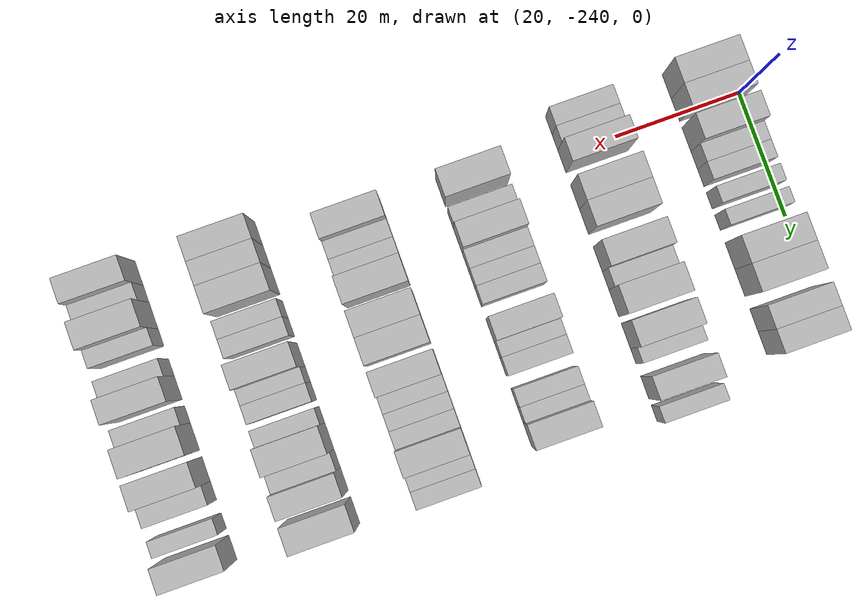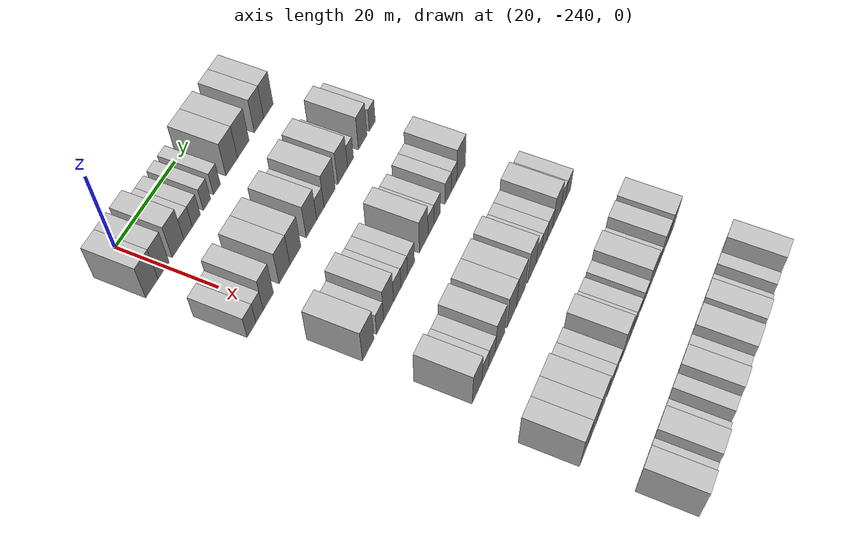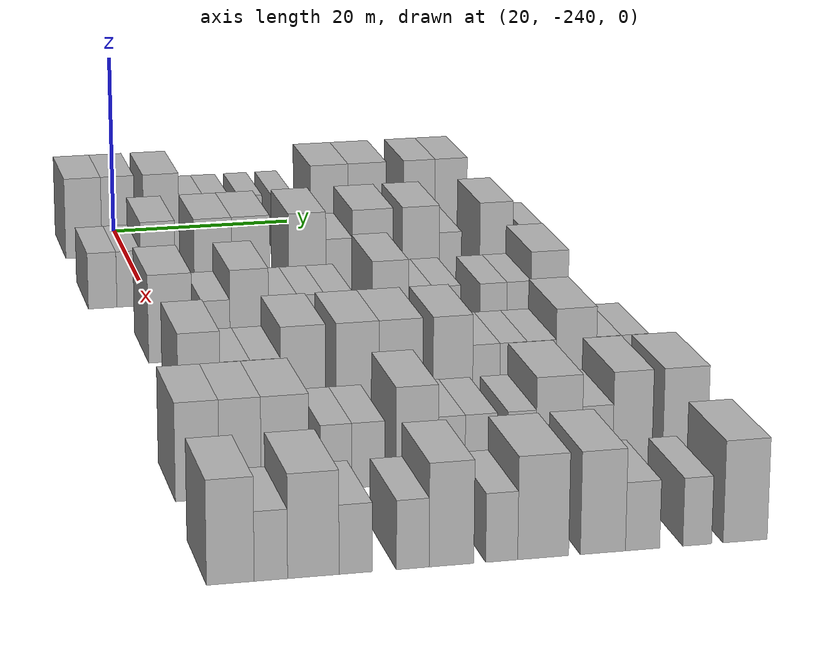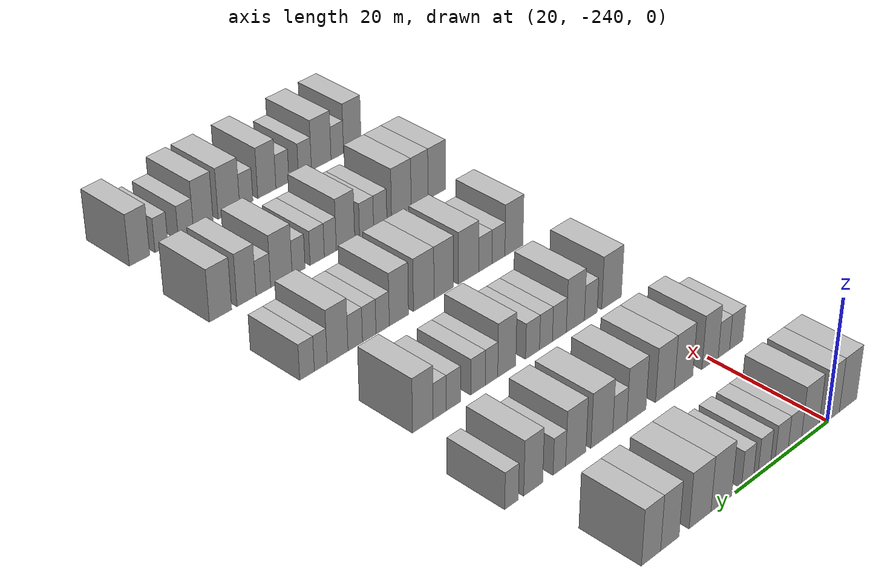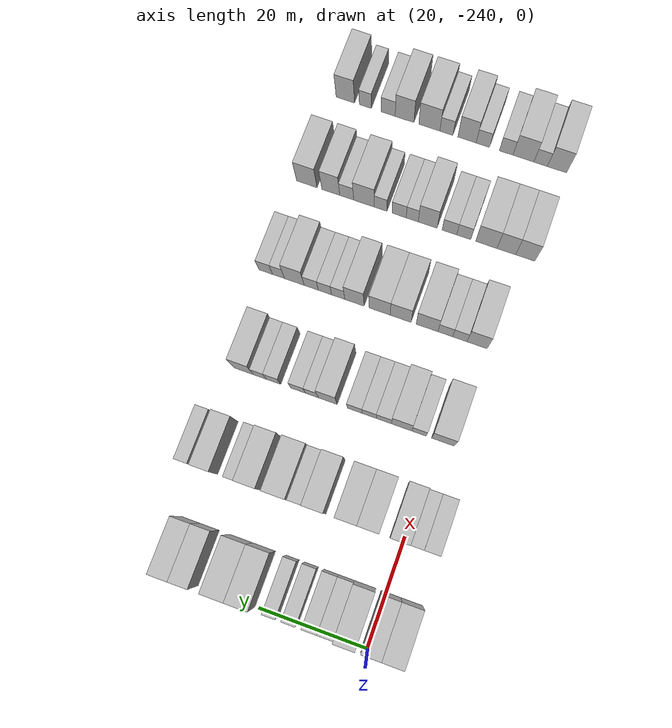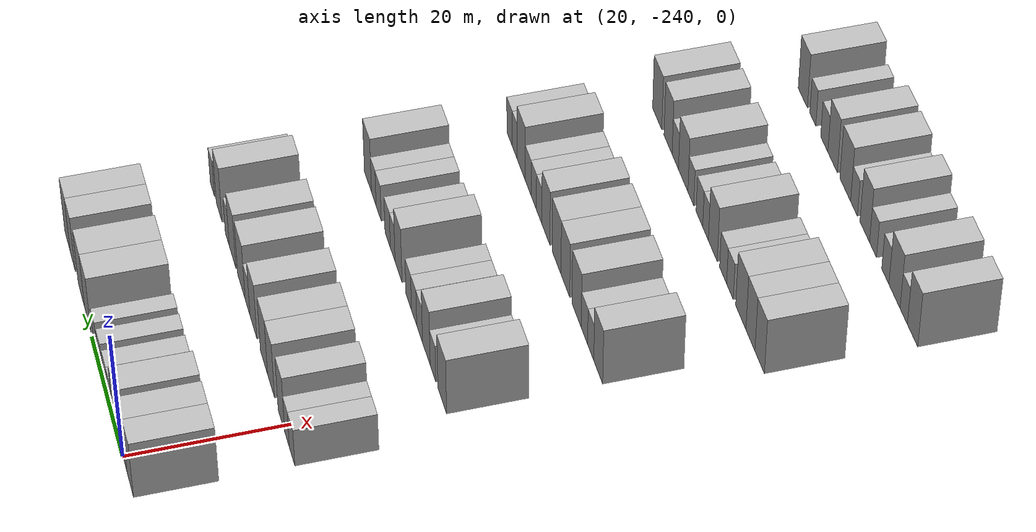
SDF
<sdf version="1.6">
 <world name="default">
  <model name="building_28">
   <static>1</static>
   <pose>25.0000 -244.6203 0 0.000000 0.000000 0.000000</pose>
   <link name="link">
    <pose>0 0 4.50 0 0 0</pose>
    <collision name="collision"><geometry><box><size>10.0000 4.0044 9.0000</size></box></geometry></collision>
    <visual name="visual">
     <cast_shadows>0</cast_shadows>
     <geometry><box><size>10.0000 4.0044 9.0000</size></box></geometry>
     <material>
      <script>
       <uri>model://HANNAS_wall/materials/scripts</uri>
       <uri>model://HANNAS_wall/materials/textures</uri>
       <name>vrc/HANNAS_wall</name>
      </script>
     </material>
    </visual>
   </link>
  </model>
  <model name="building_29">
   <static>1</static>
   <pose>25.0000 -240.7944 0 0.000000 0.000000 0.000000</pose>
   <link name="link">
    <pose>0 0 4.50 0 0 0</pose>
    <collision name="collision"><geometry><box><size>10.0000 3.6475 9.0000</size></box></geometry></collision>
    <visual name="visual">
     <cast_shadows>0</cast_shadows>
     <geometry><box><size>10.0000 3.6475 9.0000</size></box></geometry>
     <material>
      <script>
       <uri>model://HANNAS_wall/materials/scripts</uri>
       <uri>model://HANNAS_wall/materials/textures</uri>
       <name>vrc/HANNAS_wall</name>
      </script>
     </material>
    </visual>
   </link>
  </model>
  <model name="building_30">
   <static>1</static>
   <pose>25.0000 -235.9976 0 0.000000 0.000000 0.000000</pose>
   <link name="link">
    <pose>0 0 4.50 0 0 0</pose>
    <collision name="collision"><geometry><box><size>10.0000 3.9461 9.0000</size></box></geometry></collision>
    <visual name="visual">
     <cast_shadows>0</cast_shadows>
     <geometry><box><size>10.0000 3.9461 9.0000</size></box></geometry>
     <material>
      <script>
       <uri>model://HANNAS_wall/materials/scripts</uri>
       <uri>model://HANNAS_wall/materials/textures</uri>
       <name>vrc/HANNAS_wall</name>
      </script>
     </material>
    </visual>
   </link>
  </model>
  <model name="building_31">
   <static>1</static>
   <pose>25.0000 -232.5794 0 0.000000 0.000000 0.000000</pose>
   <link name="link">
    <pose>0 0 3.00 0 0 0</pose>
    <collision name="collision"><geometry><box><size>10.0000 2.8902 6.0000</size></box></geometry></collision>
    <visual name="visual">
     <cast_shadows>0</cast_shadows>
     <geometry><box><size>10.0000 2.8902 6.0000</size></box></geometry>
     <material>
      <script>
       <uri>model://HANNAS_wall/materials/scripts</uri>
       <uri>model://HANNAS_wall/materials/textures</uri>
       <name>vrc/HANNAS_wall</name>
      </script>
     </material>
    </visual>
   </link>
  </model>
  <model name="building_32">
   <static>1</static>
   <pose>25.0000 -229.7361 0 0.000000 0.000000 0.000000</pose>
   <link name="link">
    <pose>0 0 3.00 0 0 0</pose>
    <collision name="collision"><geometry><box><size>10.0000 2.7963 6.0000</size></box></geometry></collision>
    <visual name="visual">
     <cast_shadows>0</cast_shadows>
     <geometry><box><size>10.0000 2.7963 6.0000</size></box></geometry>
     <material>
      <script>
       <uri>model://HANNAS_wall/materials/scripts</uri>
       <uri>model://HANNAS_wall/materials/textures</uri>
       <name>vrc/HANNAS_wall</name>
      </script>
     </material>
    </visual>
   </link>
  </model>
  <model name="building_33">
   <static>1</static>
   <pose>25.0000 -226.0289 0 0.000000 0.000000 0.000000</pose>
   <link name="link">
    <pose>0 0 3.00 0 0 0</pose>
    <collision name="collision"><geometry><box><size>10.0000 2.6181 6.0000</size></box></geometry></collision>
    <visual name="visual">
     <cast_shadows>0</cast_shadows>
     <geometry><box><size>10.0000 2.6181 6.0000</size></box></geometry>
     <material>
      <script>
       <uri>model://HANNAS_wall/materials/scripts</uri>
       <uri>model://HANNAS_wall/materials/textures</uri>
       <name>vrc/HANNAS_wall</name>
      </script>
     </material>
    </visual>
   </link>
  </model>
  <model name="building_34">
   <static>1</static>
   <pose>25.0000 -222.4852 0 0.000000 0.000000 0.000000</pose>
   <link name="link">
    <pose>0 0 3.00 0 0 0</pose>
    <collision name="collision"><geometry><box><size>10.0000 2.4694 6.0000</size></box></geometry></collision>
    <visual name="visual">
     <cast_shadows>0</cast_shadows>
     <geometry><box><size>10.0000 2.4694 6.0000</size></box></geometry>
     <material>
      <script>
       <uri>model://HANNAS_wall/materials/scripts</uri>
       <uri>model://HANNAS_wall/materials/textures</uri>
       <name>vrc/HANNAS_wall</name>
      </script>
     </material>
    </visual>
   </link>
  </model>
  <model name="building_35">
   <static>1</static>
   <pose>25.0000 -217.1105 0 0.000000 0.000000 0.000000</pose>
   <link name="link">
    <pose>0 0 4.50 0 0 0</pose>
    <collision name="collision"><geometry><box><size>10.0000 4.2799 9.0000</size></box></geometry></collision>
    <visual name="visual">
     <cast_shadows>0</cast_shadows>
     <geometry><box><size>10.0000 4.2799 9.0000</size></box></geometry>
     <material>
      <script>
       <uri>model://HANNAS_wall/materials/scripts</uri>
       <uri>model://HANNAS_wall/materials/textures</uri>
       <name>vrc/HANNAS_wall</name>
      </script>
     </material>
    </visual>
   </link>
  </model>
  <model name="building_36">
   <static>1</static>
   <pose>25.0000 -212.7914 0 0.000000 0.000000 0.000000</pose>
   <link name="link">
    <pose>0 0 4.50 0 0 0</pose>
    <collision name="collision"><geometry><box><size>10.0000 4.3583 9.0000</size></box></geometry></collision>
    <visual name="visual">
     <cast_shadows>0</cast_shadows>
     <geometry><box><size>10.0000 4.3583 9.0000</size></box></geometry>
     <material>
      <script>
       <uri>model://HANNAS_wall/materials/scripts</uri>
       <uri>model://HANNAS_wall/materials/textures</uri>
       <name>vrc/HANNAS_wall</name>
      </script>
     </material>
    </visual>
   </link>
  </model>
  <model name="building_37">
   <static>1</static>
   <pose>25.0000 -206.8093 0 0.000000 0.000000 0.000000</pose>
   <link name="link">
    <pose>0 0 4.50 0 0 0</pose>
    <collision name="collision"><geometry><box><size>10.0000 3.6058 9.0000</size></box></geometry></collision>
    <visual name="visual">
     <cast_shadows>0</cast_shadows>
     <geometry><box><size>10.0000 3.6058 9.0000</size></box></geometry>
     <material>
      <script>
       <uri>model://HANNAS_wall/materials/scripts</uri>
       <uri>model://HANNAS_wall/materials/textures</uri>
       <name>vrc/HANNAS_wall</name>
      </script>
     </material>
    </visual>
   </link>
  </model>
  <model name="building_38">
   <static>1</static>
   <pose>25.0000 -203.1547 0 0.000000 0.000000 0.000000</pose>
   <link name="link">
    <pose>0 0 4.50 0 0 0</pose>
    <collision name="collision"><geometry><box><size>10.0000 3.7034 9.0000</size></box></geometry></collision>
    <visual name="visual">
     <cast_shadows>0</cast_shadows>
     <geometry><box><size>10.0000 3.7034 9.0000</size></box></geometry>
     <material>
      <script>
       <uri>model://HANNAS_wall/materials/scripts</uri>
       <uri>model://HANNAS_wall/materials/textures</uri>
       <name>vrc/HANNAS_wall</name>
      </script>
     </material>
    </visual>
   </link>
  </model>
  <model name="building_211">
   <static>1</static>
   <pose>44.0000 -245.0594 0 0.000000 0.000000 0.000000</pose>
   <link name="link">
    <pose>0 0 3.00 0 0 0</pose>
    <collision name="collision"><geometry><box><size>10.0000 2.9943 6.0000</size></box></geometry></collision>
    <visual name="visual">
     <cast_shadows>0</cast_shadows>
     <geometry><box><size>10.0000 2.9943 6.0000</size></box></geometry>
     <material>
      <script>
       <uri>model://HANNAS_wall/materials/scripts</uri>
       <uri>model://HANNAS_wall/materials/textures</uri>
       <name>vrc/HANNAS_wall</name>
      </script>
     </material>
    </visual>
   </link>
  </model>
  <model name="building_212">
   <static>1</static>
   <pose>44.0000 -242.2787 0 0.000000 0.000000 0.000000</pose>
   <link name="link">
    <pose>0 0 3.00 0 0 0</pose>
    <collision name="collision"><geometry><box><size>10.0000 2.5669 6.0000</size></box></geometry></collision>
    <visual name="visual">
     <cast_shadows>0</cast_shadows>
     <geometry><box><size>10.0000 2.5669 6.0000</size></box></geometry>
     <material>
      <script>
       <uri>model://HANNAS_wall/materials/scripts</uri>
       <uri>model://HANNAS_wall/materials/textures</uri>
       <name>vrc/HANNAS_wall</name>
      </script>
     </material>
    </visual>
   </link>
  </model>
  <model name="building_213">
   <static>1</static>
   <pose>44.0000 -239.1917 0 0.000000 0.000000 0.000000</pose>
   <link name="link">
    <pose>0 0 4.50 0 0 0</pose>
    <collision name="collision"><geometry><box><size>10.0000 3.6072 9.0000</size></box></geometry></collision>
    <visual name="visual">
     <cast_shadows>0</cast_shadows>
     <geometry><box><size>10.0000 3.6072 9.0000</size></box></geometry>
     <material>
      <script>
       <uri>model://HANNAS_wall/materials/scripts</uri>
       <uri>model://HANNAS_wall/materials/textures</uri>
       <name>vrc/HANNAS_wall</name>
      </script>
     </material>
    </visual>
   </link>
  </model>
  <model name="building_214">
   <static>1</static>
   <pose>44.0000 -233.3990 0 0.000000 0.000000 0.000000</pose>
   <link name="link">
    <pose>0 0 4.50 0 0 0</pose>
    <collision name="collision"><geometry><box><size>10.0000 3.9782 9.0000</size></box></geometry></collision>
    <visual name="visual">
     <cast_shadows>0</cast_shadows>
     <geometry><box><size>10.0000 3.9782 9.0000</size></box></geometry>
     <material>
      <script>
       <uri>model://HANNAS_wall/materials/scripts</uri>
       <uri>model://HANNAS_wall/materials/textures</uri>
       <name>vrc/HANNAS_wall</name>
      </script>
     </material>
    </visual>
   </link>
  </model>
  <model name="building_215">
   <static>1</static>
   <pose>44.0000 -229.3903 0 0.000000 0.000000 0.000000</pose>
   <link name="link">
    <pose>0 0 4.50 0 0 0</pose>
    <collision name="collision"><geometry><box><size>10.0000 4.0393 9.0000</size></box></geometry></collision>
    <visual name="visual">
     <cast_shadows>0</cast_shadows>
     <geometry><box><size>10.0000 4.0393 9.0000</size></box></geometry>
     <material>
      <script>
       <uri>model://HANNAS_wall/materials/scripts</uri>
       <uri>model://HANNAS_wall/materials/textures</uri>
       <name>vrc/HANNAS_wall</name>
      </script>
     </material>
    </visual>
   </link>
  </model>
  <model name="building_216">
   <static>1</static>
   <pose>44.0000 -223.3713 0 0.000000 0.000000 0.000000</pose>
   <link name="link">
    <pose>0 0 4.50 0 0 0</pose>
    <collision name="collision"><geometry><box><size>10.0000 3.9987 9.0000</size></box></geometry></collision>
    <visual name="visual">
     <cast_shadows>0</cast_shadows>
     <geometry><box><size>10.0000 3.9987 9.0000</size></box></geometry>
     <material>
      <script>
       <uri>model://HANNAS_wall/materials/scripts</uri>
       <uri>model://HANNAS_wall/materials/textures</uri>
       <name>vrc/HANNAS_wall</name>
      </script>
     </material>
    </visual>
   </link>
  </model>
  <model name="building_217">
   <static>1</static>
   <pose>44.0000 -219.9356 0 0.000000 0.000000 0.000000</pose>
   <link name="link">
    <pose>0 0 3.00 0 0 0</pose>
    <collision name="collision"><geometry><box><size>10.0000 2.8728 6.0000</size></box></geometry></collision>
    <visual name="visual">
     <cast_shadows>0</cast_shadows>
     <geometry><box><size>10.0000 2.8728 6.0000</size></box></geometry>
     <material>
      <script>
       <uri>model://HANNAS_wall/materials/scripts</uri>
       <uri>model://HANNAS_wall/materials/textures</uri>
       <name>vrc/HANNAS_wall</name>
      </script>
     </material>
    </visual>
   </link>
  </model>
  <model name="building_218">
   <static>1</static>
   <pose>44.0000 -216.3034 0 0.000000 0.000000 0.000000</pose>
   <link name="link">
    <pose>0 0 4.50 0 0 0</pose>
    <collision name="collision"><geometry><box><size>10.0000 4.3915 9.0000</size></box></geometry></collision>
    <visual name="visual">
     <cast_shadows>0</cast_shadows>
     <geometry><box><size>10.0000 4.3915 9.0000</size></box></geometry>
     <material>
      <script>
       <uri>model://HANNAS_wall/materials/scripts</uri>
       <uri>model://HANNAS_wall/materials/textures</uri>
       <name>vrc/HANNAS_wall</name>
      </script>
     </material>
    </visual>
   </link>
  </model>
  <model name="building_219">
   <static>1</static>
   <pose>44.0000 -211.0994 0 0.000000 0.000000 0.000000</pose>
   <link name="link">
    <pose>0 0 4.50 0 0 0</pose>
    <collision name="collision"><geometry><box><size>10.0000 4.0165 9.0000</size></box></geometry></collision>
    <visual name="visual">
     <cast_shadows>0</cast_shadows>
     <geometry><box><size>10.0000 4.0165 9.0000</size></box></geometry>
     <material>
      <script>
       <uri>model://HANNAS_wall/materials/scripts</uri>
       <uri>model://HANNAS_wall/materials/textures</uri>
       <name>vrc/HANNAS_wall</name>
      </script>
     </material>
    </visual>
   </link>
  </model>
  <model name="building_220">
   <static>1</static>
   <pose>44.0000 -207.8809 0 0.000000 0.000000 0.000000</pose>
   <link name="link">
    <pose>0 0 3.00 0 0 0</pose>
    <collision name="collision"><geometry><box><size>10.0000 2.4205 6.0000</size></box></geometry></collision>
    <visual name="visual">
     <cast_shadows>0</cast_shadows>
     <geometry><box><size>10.0000 2.4205 6.0000</size></box></geometry>
     <material>
      <script>
       <uri>model://HANNAS_wall/materials/scripts</uri>
       <uri>model://HANNAS_wall/materials/textures</uri>
       <name>vrc/HANNAS_wall</name>
      </script>
     </material>
    </visual>
   </link>
  </model>
  <model name="building_221">
   <static>1</static>
   <pose>44.0000 -202.8611 0 0.000000 0.000000 0.000000</pose>
   <link name="link">
    <pose>0 0 4.50 0 0 0</pose>
    <collision name="collision"><geometry><box><size>10.0000 3.6192 9.0000</size></box></geometry></collision>
    <visual name="visual">
     <cast_shadows>0</cast_shadows>
     <geometry><box><size>10.0000 3.6192 9.0000</size></box></geometry>
     <material>
      <script>
       <uri>model://HANNAS_wall/materials/scripts</uri>
       <uri>model://HANNAS_wall/materials/textures</uri>
       <name>vrc/HANNAS_wall</name>
      </script>
     </material>
    </visual>
   </link>
  </model>
  <model name="building_222">
   <static>1</static>
   <pose>44.0000 -198.7756 0 0.000000 0.000000 0.000000</pose>
   <link name="link">
    <pose>0 0 3.00 0 0 0</pose>
    <collision name="collision"><geometry><box><size>10.0000 2.5518 6.0000</size></box></geometry></collision>
    <visual name="visual">
     <cast_shadows>0</cast_shadows>
     <geometry><box><size>10.0000 2.5518 6.0000</size></box></geometry>
     <material>
      <script>
       <uri>model://HANNAS_wall/materials/scripts</uri>
       <uri>model://HANNAS_wall/materials/textures</uri>
       <name>vrc/HANNAS_wall</name>
      </script>
     </material>
    </visual>
   </link>
  </model>
  <model name="building_384">
   <static>1</static>
   <pose>63.0000 -240.8416 0 0.000000 0.000000 0.000000</pose>
   <link name="link">
    <pose>0 0 4.50 0 0 0</pose>
    <collision name="collision"><geometry><box><size>10.0000 4.3336 9.0000</size></box></geometry></collision>
    <visual name="visual">
     <cast_shadows>0</cast_shadows>
     <geometry><box><size>10.0000 4.3336 9.0000</size></box></geometry>
     <material>
      <script>
       <uri>model://HANNAS_wall/materials/scripts</uri>
       <uri>model://HANNAS_wall/materials/textures</uri>
       <name>vrc/HANNAS_wall</name>
      </script>
     </material>
    </visual>
   </link>
  </model>
  <model name="building_385">
   <static>1</static>
   <pose>63.0000 -236.2822 0 0.000000 0.000000 0.000000</pose>
   <link name="link">
    <pose>0 0 3.00 0 0 0</pose>
    <collision name="collision"><geometry><box><size>10.0000 2.7852 6.0000</size></box></geometry></collision>
    <visual name="visual">
     <cast_shadows>0</cast_shadows>
     <geometry><box><size>10.0000 2.7852 6.0000</size></box></geometry>
     <material>
      <script>
       <uri>model://HANNAS_wall/materials/scripts</uri>
       <uri>model://HANNAS_wall/materials/textures</uri>
       <name>vrc/HANNAS_wall</name>
      </script>
     </material>
    </visual>
   </link>
  </model>
  <model name="building_386">
   <static>1</static>
   <pose>63.0000 -232.9576 0 0.000000 0.000000 0.000000</pose>
   <link name="link">
    <pose>0 0 4.50 0 0 0</pose>
    <collision name="collision"><geometry><box><size>10.0000 3.8641 9.0000</size></box></geometry></collision>
    <visual name="visual">
     <cast_shadows>0</cast_shadows>
     <geometry><box><size>10.0000 3.8641 9.0000</size></box></geometry>
     <material>
      <script>
       <uri>model://HANNAS_wall/materials/scripts</uri>
       <uri>model://HANNAS_wall/materials/textures</uri>
       <name>vrc/HANNAS_wall</name>
      </script>
     </material>
    </visual>
   </link>
  </model>
  <model name="building_387">
   <static>1</static>
   <pose>63.0000 -229.5563 0 0.000000 0.000000 0.000000</pose>
   <link name="link">
    <pose>0 0 3.00 0 0 0</pose>
    <collision name="collision"><geometry><box><size>10.0000 2.9384 6.0000</size></box></geometry></collision>
    <visual name="visual">
     <cast_shadows>0</cast_shadows>
     <geometry><box><size>10.0000 2.9384 6.0000</size></box></geometry>
     <material>
      <script>
       <uri>model://HANNAS_wall/materials/scripts</uri>
       <uri>model://HANNAS_wall/materials/textures</uri>
       <name>vrc/HANNAS_wall</name>
      </script>
     </material>
    </visual>
   </link>
  </model>
  <model name="building_388">
   <static>1</static>
   <pose>63.0000 -226.7396 0 0.000000 0.000000 0.000000</pose>
   <link name="link">
    <pose>0 0 3.00 0 0 0</pose>
    <collision name="collision"><geometry><box><size>10.0000 2.6950 6.0000</size></box></geometry></collision>
    <visual name="visual">
     <cast_shadows>0</cast_shadows>
     <geometry><box><size>10.0000 2.6950 6.0000</size></box></geometry>
     <material>
      <script>
       <uri>model://HANNAS_wall/materials/scripts</uri>
       <uri>model://HANNAS_wall/materials/textures</uri>
       <name>vrc/HANNAS_wall</name>
      </script>
     </material>
    </visual>
   </link>
  </model>
  <model name="building_389">
   <static>1</static>
   <pose>63.0000 -223.9565 0 0.000000 0.000000 0.000000</pose>
   <link name="link">
    <pose>0 0 3.00 0 0 0</pose>
    <collision name="collision"><geometry><box><size>10.0000 2.8712 6.0000</size></box></geometry></collision>
    <visual name="visual">
     <cast_shadows>0</cast_shadows>
     <geometry><box><size>10.0000 2.8712 6.0000</size></box></geometry>
     <material>
      <script>
       <uri>model://HANNAS_wall/materials/scripts</uri>
       <uri>model://HANNAS_wall/materials/textures</uri>
       <name>vrc/HANNAS_wall</name>
      </script>
     </material>
    </visual>
   </link>
  </model>
  <model name="building_390">
   <static>1</static>
   <pose>63.0000 -218.6915 0 0.000000 0.000000 0.000000</pose>
   <link name="link">
    <pose>0 0 4.50 0 0 0</pose>
    <collision name="collision"><geometry><box><size>10.0000 3.6589 9.0000</size></box></geometry></collision>
    <visual name="visual">
     <cast_shadows>0</cast_shadows>
     <geometry><box><size>10.0000 3.6589 9.0000</size></box></geometry>
     <material>
      <script>
       <uri>model://HANNAS_wall/materials/scripts</uri>
       <uri>model://HANNAS_wall/materials/textures</uri>
       <name>vrc/HANNAS_wall</name>
      </script>
     </material>
    </visual>
   </link>
  </model>
  <model name="building_391">
   <static>1</static>
   <pose>63.0000 -215.6157 0 0.000000 0.000000 0.000000</pose>
   <link name="link">
    <pose>0 0 3.00 0 0 0</pose>
    <collision name="collision"><geometry><box><size>10.0000 2.4927 6.0000</size></box></geometry></collision>
    <visual name="visual">
     <cast_shadows>0</cast_shadows>
     <geometry><box><size>10.0000 2.4927 6.0000</size></box></geometry>
     <material>
      <script>
       <uri>model://HANNAS_wall/materials/scripts</uri>
       <uri>model://HANNAS_wall/materials/textures</uri>
       <name>vrc/HANNAS_wall</name>
      </script>
     </material>
    </visual>
   </link>
  </model>
  <model name="building_392">
   <static>1</static>
   <pose>63.0000 -212.9369 0 0.000000 0.000000 0.000000</pose>
   <link name="link">
    <pose>0 0 3.00 0 0 0</pose>
    <collision name="collision"><geometry><box><size>10.0000 2.8649 6.0000</size></box></geometry></collision>
    <visual name="visual">
     <cast_shadows>0</cast_shadows>
     <geometry><box><size>10.0000 2.8649 6.0000</size></box></geometry>
     <material>
      <script>
       <uri>model://HANNAS_wall/materials/scripts</uri>
       <uri>model://HANNAS_wall/materials/textures</uri>
       <name>vrc/HANNAS_wall</name>
      </script>
     </material>
    </visual>
   </link>
  </model>
  <model name="building_393">
   <static>1</static>
   <pose>63.0000 -208.1126 0 0.000000 0.000000 0.000000</pose>
   <link name="link">
    <pose>0 0 3.00 0 0 0</pose>
    <collision name="collision"><geometry><box><size>10.0000 2.7836 6.0000</size></box></geometry></collision>
    <visual name="visual">
     <cast_shadows>0</cast_shadows>
     <geometry><box><size>10.0000 2.7836 6.0000</size></box></geometry>
     <material>
      <script>
       <uri>model://HANNAS_wall/materials/scripts</uri>
       <uri>model://HANNAS_wall/materials/textures</uri>
       <name>vrc/HANNAS_wall</name>
      </script>
     </material>
    </visual>
   </link>
  </model>
  <model name="building_394">
   <static>1</static>
   <pose>63.0000 -205.4713 0 0.000000 0.000000 0.000000</pose>
   <link name="link">
    <pose>0 0 3.00 0 0 0</pose>
    <collision name="collision"><geometry><box><size>10.0000 2.4991 6.0000</size></box></geometry></collision>
    <visual name="visual">
     <cast_shadows>0</cast_shadows>
     <geometry><box><size>10.0000 2.4991 6.0000</size></box></geometry>
     <material>
      <script>
       <uri>model://HANNAS_wall/materials/scripts</uri>
       <uri>model://HANNAS_wall/materials/textures</uri>
       <name>vrc/HANNAS_wall</name>
      </script>
     </material>
    </visual>
   </link>
  </model>
  <model name="building_395">
   <static>1</static>
   <pose>63.0000 -202.2867 0 0.000000 0.000000 0.000000</pose>
   <link name="link">
    <pose>0 0 4.50 0 0 0</pose>
    <collision name="collision"><geometry><box><size>10.0000 3.8701 9.0000</size></box></geometry></collision>
    <visual name="visual">
     <cast_shadows>0</cast_shadows>
     <geometry><box><size>10.0000 3.8701 9.0000</size></box></geometry>
     <material>
      <script>
       <uri>model://HANNAS_wall/materials/scripts</uri>
       <uri>model://HANNAS_wall/materials/textures</uri>
       <name>vrc/HANNAS_wall</name>
      </script>
     </material>
    </visual>
   </link>
  </model>
  <model name="building_545">
   <static>1</static>
   <pose>82.0000 -241.0518 0 0.000000 0.000000 0.000000</pose>
   <link name="link">
    <pose>0 0 4.50 0 0 0</pose>
    <collision name="collision"><geometry><box><size>10.0000 3.9408 9.0000</size></box></geometry></collision>
    <visual name="visual">
     <cast_shadows>0</cast_shadows>
     <geometry><box><size>10.0000 3.9408 9.0000</size></box></geometry>
     <material>
      <script>
       <uri>model://HANNAS_wall/materials/scripts</uri>
       <uri>model://HANNAS_wall/materials/textures</uri>
       <name>vrc/HANNAS_wall</name>
      </script>
     </material>
    </visual>
   </link>
  </model>
  <model name="building_546">
   <static>1</static>
   <pose>82.0000 -237.6771 0 0.000000 0.000000 0.000000</pose>
   <link name="link">
    <pose>0 0 3.00 0 0 0</pose>
    <collision name="collision"><geometry><box><size>10.0000 2.8086 6.0000</size></box></geometry></collision>
    <visual name="visual">
     <cast_shadows>0</cast_shadows>
     <geometry><box><size>10.0000 2.8086 6.0000</size></box></geometry>
     <material>
      <script>
       <uri>model://HANNAS_wall/materials/scripts</uri>
       <uri>model://HANNAS_wall/materials/textures</uri>
       <name>vrc/HANNAS_wall</name>
      </script>
     </material>
    </visual>
   </link>
  </model>
  <model name="building_547">
   <static>1</static>
   <pose>82.0000 -234.8387 0 0.000000 0.000000 0.000000</pose>
   <link name="link">
    <pose>0 0 3.00 0 0 0</pose>
    <collision name="collision"><geometry><box><size>10.0000 2.8682 6.0000</size></box></geometry></collision>
    <visual name="visual">
     <cast_shadows>0</cast_shadows>
     <geometry><box><size>10.0000 2.8682 6.0000</size></box></geometry>
     <material>
      <script>
       <uri>model://HANNAS_wall/materials/scripts</uri>
       <uri>model://HANNAS_wall/materials/textures</uri>
       <name>vrc/HANNAS_wall</name>
      </script>
     </material>
    </visual>
   </link>
  </model>
  <model name="building_548">
   <static>1</static>
   <pose>82.0000 -231.2766 0 0.000000 0.000000 0.000000</pose>
   <link name="link">
    <pose>0 0 4.50 0 0 0</pose>
    <collision name="collision"><geometry><box><size>10.0000 4.2560 9.0000</size></box></geometry></collision>
    <visual name="visual">
     <cast_shadows>0</cast_shadows>
     <geometry><box><size>10.0000 4.2560 9.0000</size></box></geometry>
     <material>
      <script>
       <uri>model://HANNAS_wall/materials/scripts</uri>
       <uri>model://HANNAS_wall/materials/textures</uri>
       <name>vrc/HANNAS_wall</name>
      </script>
     </material>
    </visual>
   </link>
  </model>
  <model name="building_549">
   <static>1</static>
   <pose>82.0000 -226.1065 0 0.000000 0.000000 0.000000</pose>
   <link name="link">
    <pose>0 0 4.50 0 0 0</pose>
    <collision name="collision"><geometry><box><size>10.0000 4.0841 9.0000</size></box></geometry></collision>
    <visual name="visual">
     <cast_shadows>0</cast_shadows>
     <geometry><box><size>10.0000 4.0841 9.0000</size></box></geometry>
     <material>
      <script>
       <uri>model://HANNAS_wall/materials/scripts</uri>
       <uri>model://HANNAS_wall/materials/textures</uri>
       <name>vrc/HANNAS_wall</name>
      </script>
     </material>
    </visual>
   </link>
  </model>
  <model name="building_550">
   <static>1</static>
   <pose>82.0000 -221.9691 0 0.000000 0.000000 0.000000</pose>
   <link name="link">
    <pose>0 0 4.50 0 0 0</pose>
    <collision name="collision"><geometry><box><size>10.0000 4.1909 9.0000</size></box></geometry></collision>
    <visual name="visual">
     <cast_shadows>0</cast_shadows>
     <geometry><box><size>10.0000 4.1909 9.0000</size></box></geometry>
     <material>
      <script>
       <uri>model://HANNAS_wall/materials/scripts</uri>
       <uri>model://HANNAS_wall/materials/textures</uri>
       <name>vrc/HANNAS_wall</name>
      </script>
     </material>
    </visual>
   </link>
  </model>
  <model name="building_551">
   <static>1</static>
   <pose>82.0000 -216.9587 0 0.000000 0.000000 0.000000</pose>
   <link name="link">
    <pose>0 0 4.50 0 0 0</pose>
    <collision name="collision"><geometry><box><size>10.0000 3.8298 9.0000</size></box></geometry></collision>
    <visual name="visual">
     <cast_shadows>0</cast_shadows>
     <geometry><box><size>10.0000 3.8298 9.0000</size></box></geometry>
     <material>
      <script>
       <uri>model://HANNAS_wall/materials/scripts</uri>
       <uri>model://HANNAS_wall/materials/textures</uri>
       <name>vrc/HANNAS_wall</name>
      </script>
     </material>
    </visual>
   </link>
  </model>
  <model name="building_552">
   <static>1</static>
   <pose>82.0000 -213.7298 0 0.000000 0.000000 0.000000</pose>
   <link name="link">
    <pose>0 0 3.00 0 0 0</pose>
    <collision name="collision"><geometry><box><size>10.0000 2.6281 6.0000</size></box></geometry></collision>
    <visual name="visual">
     <cast_shadows>0</cast_shadows>
     <geometry><box><size>10.0000 2.6281 6.0000</size></box></geometry>
     <material>
      <script>
       <uri>model://HANNAS_wall/materials/scripts</uri>
       <uri>model://HANNAS_wall/materials/textures</uri>
       <name>vrc/HANNAS_wall</name>
      </script>
     </material>
    </visual>
   </link>
  </model>
  <model name="building_553">
   <static>1</static>
   <pose>82.0000 -211.0941 0 0.000000 0.000000 0.000000</pose>
   <link name="link">
    <pose>0 0 3.00 0 0 0</pose>
    <collision name="collision"><geometry><box><size>10.0000 2.6432 6.0000</size></box></geometry></collision>
    <visual name="visual">
     <cast_shadows>0</cast_shadows>
     <geometry><box><size>10.0000 2.6432 6.0000</size></box></geometry>
     <material>
      <script>
       <uri>model://HANNAS_wall/materials/scripts</uri>
       <uri>model://HANNAS_wall/materials/textures</uri>
       <name>vrc/HANNAS_wall</name>
      </script>
     </material>
    </visual>
   </link>
  </model>
  <model name="building_554">
   <static>1</static>
   <pose>82.0000 -208.3695 0 0.000000 0.000000 0.000000</pose>
   <link name="link">
    <pose>0 0 3.00 0 0 0</pose>
    <collision name="collision"><geometry><box><size>10.0000 2.8060 6.0000</size></box></geometry></collision>
    <visual name="visual">
     <cast_shadows>0</cast_shadows>
     <geometry><box><size>10.0000 2.8060 6.0000</size></box></geometry>
     <material>
      <script>
       <uri>model://HANNAS_wall/materials/scripts</uri>
       <uri>model://HANNAS_wall/materials/textures</uri>
       <name>vrc/HANNAS_wall</name>
      </script>
     </material>
    </visual>
   </link>
  </model>
  <model name="building_555">
   <static>1</static>
   <pose>82.0000 -204.9814 0 0.000000 0.000000 0.000000</pose>
   <link name="link">
    <pose>0 0 4.50 0 0 0</pose>
    <collision name="collision"><geometry><box><size>10.0000 3.9703 9.0000</size></box></geometry></collision>
    <visual name="visual">
     <cast_shadows>0</cast_shadows>
     <geometry><box><size>10.0000 3.9703 9.0000</size></box></geometry>
     <material>
      <script>
       <uri>model://HANNAS_wall/materials/scripts</uri>
       <uri>model://HANNAS_wall/materials/textures</uri>
       <name>vrc/HANNAS_wall</name>
      </script>
     </material>
    </visual>
   </link>
  </model>
  <model name="building_556">
   <static>1</static>
   <pose>82.0000 -201.7903 0 0.000000 0.000000 0.000000</pose>
   <link name="link">
    <pose>0 0 3.00 0 0 0</pose>
    <collision name="collision"><geometry><box><size>10.0000 2.4119 6.0000</size></box></geometry></collision>
    <visual name="visual">
     <cast_shadows>0</cast_shadows>
     <geometry><box><size>10.0000 2.4119 6.0000</size></box></geometry>
     <material>
      <script>
       <uri>model://HANNAS_wall/materials/scripts</uri>
       <uri>model://HANNAS_wall/materials/textures</uri>
       <name>vrc/HANNAS_wall</name>
      </script>
     </material>
    </visual>
   </link>
  </model>
  <model name="building_557">
   <static>1</static>
   <pose>82.0000 -199.2240 0 0.000000 0.000000 0.000000</pose>
   <link name="link">
    <pose>0 0 3.00 0 0 0</pose>
    <collision name="collision"><geometry><box><size>10.0000 2.7207 6.0000</size></box></geometry></collision>
    <visual name="visual">
     <cast_shadows>0</cast_shadows>
     <geometry><box><size>10.0000 2.7207 6.0000</size></box></geometry>
     <material>
      <script>
       <uri>model://HANNAS_wall/materials/scripts</uri>
       <uri>model://HANNAS_wall/materials/textures</uri>
       <name>vrc/HANNAS_wall</name>
      </script>
     </material>
    </visual>
   </link>
  </model>
  <model name="building_720">
   <static>1</static>
   <pose>101.0000 -244.3357 0 0.000000 0.000000 0.000000</pose>
   <link name="link">
    <pose>0 0 4.50 0 0 0</pose>
    <collision name="collision"><geometry><box><size>10.0000 3.8360 9.0000</size></box></geometry></collision>
    <visual name="visual">
     <cast_shadows>0</cast_shadows>
     <geometry><box><size>10.0000 3.8360 9.0000</size></box></geometry>
     <material>
      <script>
       <uri>model://HANNAS_wall/materials/scripts</uri>
       <uri>model://HANNAS_wall/materials/textures</uri>
       <name>vrc/HANNAS_wall</name>
      </script>
     </material>
    </visual>
   </link>
  </model>
  <model name="building_721">
   <static>1</static>
   <pose>101.0000 -240.5740 0 0.000000 0.000000 0.000000</pose>
   <link name="link">
    <pose>0 0 4.50 0 0 0</pose>
    <collision name="collision"><geometry><box><size>10.0000 3.6874 9.0000</size></box></geometry></collision>
    <visual name="visual">
     <cast_shadows>0</cast_shadows>
     <geometry><box><size>10.0000 3.6874 9.0000</size></box></geometry>
     <material>
      <script>
       <uri>model://HANNAS_wall/materials/scripts</uri>
       <uri>model://HANNAS_wall/materials/textures</uri>
       <name>vrc/HANNAS_wall</name>
      </script>
     </material>
    </visual>
   </link>
  </model>
  <model name="building_722">
   <static>1</static>
   <pose>101.0000 -236.6188 0 0.000000 0.000000 0.000000</pose>
   <link name="link">
    <pose>0 0 4.50 0 0 0</pose>
    <collision name="collision"><geometry><box><size>10.0000 4.2230 9.0000</size></box></geometry></collision>
    <visual name="visual">
     <cast_shadows>0</cast_shadows>
     <geometry><box><size>10.0000 4.2230 9.0000</size></box></geometry>
     <material>
      <script>
       <uri>model://HANNAS_wall/materials/scripts</uri>
       <uri>model://HANNAS_wall/materials/textures</uri>
       <name>vrc/HANNAS_wall</name>
      </script>
     </material>
    </visual>
   </link>
  </model>
  <model name="building_723">
   <static>1</static>
   <pose>101.0000 -232.1055 0 0.000000 0.000000 0.000000</pose>
   <link name="link">
    <pose>0 0 3.00 0 0 0</pose>
    <collision name="collision"><geometry><box><size>10.0000 2.8037 6.0000</size></box></geometry></collision>
    <visual name="visual">
     <cast_shadows>0</cast_shadows>
     <geometry><box><size>10.0000 2.8037 6.0000</size></box></geometry>
     <material>
      <script>
       <uri>model://HANNAS_wall/materials/scripts</uri>
       <uri>model://HANNAS_wall/materials/textures</uri>
       <name>vrc/HANNAS_wall</name>
      </script>
     </material>
    </visual>
   </link>
  </model>
  <model name="building_724">
   <static>1</static>
   <pose>101.0000 -229.2357 0 0.000000 0.000000 0.000000</pose>
   <link name="link">
    <pose>0 0 3.00 0 0 0</pose>
    <collision name="collision"><geometry><box><size>10.0000 2.9358 6.0000</size></box></geometry></collision>
    <visual name="visual">
     <cast_shadows>0</cast_shadows>
     <geometry><box><size>10.0000 2.9358 6.0000</size></box></geometry>
     <material>
      <script>
       <uri>model://HANNAS_wall/materials/scripts</uri>
       <uri>model://HANNAS_wall/materials/textures</uri>
       <name>vrc/HANNAS_wall</name>
      </script>
     </material>
    </visual>
   </link>
  </model>
  <model name="building_725">
   <static>1</static>
   <pose>101.0000 -224.8706 0 0.000000 0.000000 0.000000</pose>
   <link name="link">
    <pose>0 0 4.50 0 0 0</pose>
    <collision name="collision"><geometry><box><size>10.0000 3.7943 9.0000</size></box></geometry></collision>
    <visual name="visual">
     <cast_shadows>0</cast_shadows>
     <geometry><box><size>10.0000 3.7943 9.0000</size></box></geometry>
     <material>
      <script>
       <uri>model://HANNAS_wall/materials/scripts</uri>
       <uri>model://HANNAS_wall/materials/textures</uri>
       <name>vrc/HANNAS_wall</name>
      </script>
     </material>
    </visual>
   </link>
  </model>
  <model name="building_726">
   <static>1</static>
   <pose>101.0000 -221.7545 0 0.000000 0.000000 0.000000</pose>
   <link name="link">
    <pose>0 0 3.00 0 0 0</pose>
    <collision name="collision"><geometry><box><size>10.0000 2.4380 6.0000</size></box></geometry></collision>
    <visual name="visual">
     <cast_shadows>0</cast_shadows>
     <geometry><box><size>10.0000 2.4380 6.0000</size></box></geometry>
     <material>
      <script>
       <uri>model://HANNAS_wall/materials/scripts</uri>
       <uri>model://HANNAS_wall/materials/textures</uri>
       <name>vrc/HANNAS_wall</name>
      </script>
     </material>
    </visual>
   </link>
  </model>
  <model name="building_727">
   <static>1</static>
   <pose>101.0000 -219.0983 0 0.000000 0.000000 0.000000</pose>
   <link name="link">
    <pose>0 0 3.00 0 0 0</pose>
    <collision name="collision"><geometry><box><size>10.0000 2.8744 6.0000</size></box></geometry></collision>
    <visual name="visual">
     <cast_shadows>0</cast_shadows>
     <geometry><box><size>10.0000 2.8744 6.0000</size></box></geometry>
     <material>
      <script>
       <uri>model://HANNAS_wall/materials/scripts</uri>
       <uri>model://HANNAS_wall/materials/textures</uri>
       <name>vrc/HANNAS_wall</name>
      </script>
     </material>
    </visual>
   </link>
  </model>
  <model name="building_728">
   <static>1</static>
   <pose>101.0000 -215.3793 0 0.000000 0.000000 0.000000</pose>
   <link name="link">
    <pose>0 0 3.00 0 0 0</pose>
    <collision name="collision"><geometry><box><size>10.0000 2.5637 6.0000</size></box></geometry></collision>
    <visual name="visual">
     <cast_shadows>0</cast_shadows>
     <geometry><box><size>10.0000 2.5637 6.0000</size></box></geometry>
     <material>
      <script>
       <uri>model://HANNAS_wall/materials/scripts</uri>
       <uri>model://HANNAS_wall/materials/textures</uri>
       <name>vrc/HANNAS_wall</name>
      </script>
     </material>
    </visual>
   </link>
  </model>
  <model name="building_729">
   <static>1</static>
   <pose>101.0000 -211.9898 0 0.000000 0.000000 0.000000</pose>
   <link name="link">
    <pose>0 0 4.50 0 0 0</pose>
    <collision name="collision"><geometry><box><size>10.0000 4.2154 9.0000</size></box></geometry></collision>
    <visual name="visual">
     <cast_shadows>0</cast_shadows>
     <geometry><box><size>10.0000 4.2154 9.0000</size></box></geometry>
     <material>
      <script>
       <uri>model://HANNAS_wall/materials/scripts</uri>
       <uri>model://HANNAS_wall/materials/textures</uri>
       <name>vrc/HANNAS_wall</name>
      </script>
     </material>
    </visual>
   </link>
  </model>
  <model name="building_730">
   <static>1</static>
   <pose>101.0000 -208.4651 0 0.000000 0.000000 0.000000</pose>
   <link name="link">
    <pose>0 0 3.00 0 0 0</pose>
    <collision name="collision"><geometry><box><size>10.0000 2.8339 6.0000</size></box></geometry></collision>
    <visual name="visual">
     <cast_shadows>0</cast_shadows>
     <geometry><box><size>10.0000 2.8339 6.0000</size></box></geometry>
     <material>
      <script>
       <uri>model://HANNAS_wall/materials/scripts</uri>
       <uri>model://HANNAS_wall/materials/textures</uri>
       <name>vrc/HANNAS_wall</name>
      </script>
     </material>
    </visual>
   </link>
  </model>
  <model name="building_731">
   <static>1</static>
   <pose>101.0000 -205.2246 0 0.000000 0.000000 0.000000</pose>
   <link name="link">
    <pose>0 0 4.50 0 0 0</pose>
    <collision name="collision"><geometry><box><size>10.0000 3.6472 9.0000</size></box></geometry></collision>
    <visual name="visual">
     <cast_shadows>0</cast_shadows>
     <geometry><box><size>10.0000 3.6472 9.0000</size></box></geometry>
     <material>
      <script>
       <uri>model://HANNAS_wall/materials/scripts</uri>
       <uri>model://HANNAS_wall/materials/textures</uri>
       <name>vrc/HANNAS_wall</name>
      </script>
     </material>
    </visual>
   </link>
  </model>
  <model name="building_732">
   <static>1</static>
   <pose>101.0000 -200.3118 0 0.000000 0.000000 0.000000</pose>
   <link name="link">
    <pose>0 0 4.50 0 0 0</pose>
    <collision name="collision"><geometry><box><size>10.0000 4.1785 9.0000</size></box></geometry></collision>
    <visual name="visual">
     <cast_shadows>0</cast_shadows>
     <geometry><box><size>10.0000 4.1785 9.0000</size></box></geometry>
     <material>
      <script>
       <uri>model://HANNAS_wall/materials/scripts</uri>
       <uri>model://HANNAS_wall/materials/textures</uri>
       <name>vrc/HANNAS_wall</name>
      </script>
     </material>
    </visual>
   </link>
  </model>
  <model name="building_881">
   <static>1</static>
   <pose>120.0000 -244.7349 0 0.000000 0.000000 0.000000</pose>
   <link name="link">
    <pose>0 0 4.50 0 0 0</pose>
    <collision name="collision"><geometry><box><size>10.0000 3.8950 9.0000</size></box></geometry></collision>
    <visual name="visual">
     <cast_shadows>0</cast_shadows>
     <geometry><box><size>10.0000 3.8950 9.0000</size></box></geometry>
     <material>
      <script>
       <uri>model://HANNAS_wall/materials/scripts</uri>
       <uri>model://HANNAS_wall/materials/textures</uri>
       <name>vrc/HANNAS_wall</name>
      </script>
     </material>
    </visual>
   </link>
  </model>
  <model name="building_882">
   <static>1</static>
   <pose>120.0000 -241.4176 0 0.000000 0.000000 0.000000</pose>
   <link name="link">
    <pose>0 0 3.00 0 0 0</pose>
    <collision name="collision"><geometry><box><size>10.0000 2.7395 6.0000</size></box></geometry></collision>
    <visual name="visual">
     <cast_shadows>0</cast_shadows>
     <geometry><box><size>10.0000 2.7395 6.0000</size></box></geometry>
     <material>
      <script>
       <uri>model://HANNAS_wall/materials/scripts</uri>
       <uri>model://HANNAS_wall/materials/textures</uri>
       <name>vrc/HANNAS_wall</name>
      </script>
     </material>
    </visual>
   </link>
  </model>
  <model name="building_883">
   <static>1</static>
   <pose>120.0000 -237.9293 0 0.000000 0.000000 0.000000</pose>
   <link name="link">
    <pose>0 0 4.50 0 0 0</pose>
    <collision name="collision"><geometry><box><size>10.0000 4.2372 9.0000</size></box></geometry></collision>
    <visual name="visual">
     <cast_shadows>0</cast_shadows>
     <geometry><box><size>10.0000 4.2372 9.0000</size></box></geometry>
     <material>
      <script>
       <uri>model://HANNAS_wall/materials/scripts</uri>
       <uri>model://HANNAS_wall/materials/textures</uri>
       <name>vrc/HANNAS_wall</name>
      </script>
     </material>
    </visual>
   </link>
  </model>
  <model name="building_884">
   <static>1</static>
   <pose>120.0000 -234.4261 0 0.000000 0.000000 0.000000</pose>
   <link name="link">
    <pose>0 0 3.00 0 0 0</pose>
    <collision name="collision"><geometry><box><size>10.0000 2.7692 6.0000</size></box></geometry></collision>
    <visual name="visual">
     <cast_shadows>0</cast_shadows>
     <geometry><box><size>10.0000 2.7692 6.0000</size></box></geometry>
     <material>
      <script>
       <uri>model://HANNAS_wall/materials/scripts</uri>
       <uri>model://HANNAS_wall/materials/textures</uri>
       <name>vrc/HANNAS_wall</name>
      </script>
     </material>
    </visual>
   </link>
  </model>
  <model name="building_885">
   <static>1</static>
   <pose>120.0000 -229.6744 0 0.000000 0.000000 0.000000</pose>
   <link name="link">
    <pose>0 0 3.00 0 0 0</pose>
    <collision name="collision"><geometry><box><size>10.0000 2.7342 6.0000</size></box></geometry></collision>
    <visual name="visual">
     <cast_shadows>0</cast_shadows>
     <geometry><box><size>10.0000 2.7342 6.0000</size></box></geometry>
     <material>
      <script>
       <uri>model://HANNAS_wall/materials/scripts</uri>
       <uri>model://HANNAS_wall/materials/textures</uri>
       <name>vrc/HANNAS_wall</name>
      </script>
     </material>
    </visual>
   </link>
  </model>
  <model name="building_886">
   <static>1</static>
   <pose>120.0000 -226.4259 0 0.000000 0.000000 0.000000</pose>
   <link name="link">
    <pose>0 0 4.50 0 0 0</pose>
    <collision name="collision"><geometry><box><size>10.0000 3.7629 9.0000</size></box></geometry></collision>
    <visual name="visual">
     <cast_shadows>0</cast_shadows>
     <geometry><box><size>10.0000 3.7629 9.0000</size></box></geometry>
     <material>
      <script>
       <uri>model://HANNAS_wall/materials/scripts</uri>
       <uri>model://HANNAS_wall/materials/textures</uri>
       <name>vrc/HANNAS_wall</name>
      </script>
     </material>
    </visual>
   </link>
  </model>
  <model name="building_887">
   <static>1</static>
   <pose>120.0000 -222.1918 0 0.000000 0.000000 0.000000</pose>
   <link name="link">
    <pose>0 0 3.00 0 0 0</pose>
    <collision name="collision"><geometry><box><size>10.0000 2.7052 6.0000</size></box></geometry></collision>
    <visual name="visual">
     <cast_shadows>0</cast_shadows>
     <geometry><box><size>10.0000 2.7052 6.0000</size></box></geometry>
     <material>
      <script>
       <uri>model://HANNAS_wall/materials/scripts</uri>
       <uri>model://HANNAS_wall/materials/textures</uri>
       <name>vrc/HANNAS_wall</name>
      </script>
     </material>
    </visual>
   </link>
  </model>
  <model name="building_888">
   <static>1</static>
   <pose>120.0000 -218.6701 0 0.000000 0.000000 0.000000</pose>
   <link name="link">
    <pose>0 0 4.50 0 0 0</pose>
    <collision name="collision"><geometry><box><size>10.0000 4.3382 9.0000</size></box></geometry></collision>
    <visual name="visual">
     <cast_shadows>0</cast_shadows>
     <geometry><box><size>10.0000 4.3382 9.0000</size></box></geometry>
     <material>
      <script>
       <uri>model://HANNAS_wall/materials/scripts</uri>
       <uri>model://HANNAS_wall/materials/textures</uri>
       <name>vrc/HANNAS_wall</name>
      </script>
     </material>
    </visual>
   </link>
  </model>
  <model name="building_889">
   <static>1</static>
   <pose>120.0000 -213.5654 0 0.000000 0.000000 0.000000</pose>
   <link name="link">
    <pose>0 0 4.50 0 0 0</pose>
    <collision name="collision"><geometry><box><size>10.0000 3.8713 9.0000</size></box></geometry></collision>
    <visual name="visual">
     <cast_shadows>0</cast_shadows>
     <geometry><box><size>10.0000 3.8713 9.0000</size></box></geometry>
     <material>
      <script>
       <uri>model://HANNAS_wall/materials/scripts</uri>
       <uri>model://HANNAS_wall/materials/textures</uri>
       <name>vrc/HANNAS_wall</name>
      </script>
     </material>
    </visual>
   </link>
  </model>
  <model name="building_890">
   <static>1</static>
   <pose>120.0000 -210.1521 0 0.000000 0.000000 0.000000</pose>
   <link name="link">
    <pose>0 0 3.00 0 0 0</pose>
    <collision name="collision"><geometry><box><size>10.0000 2.9553 6.0000</size></box></geometry></collision>
    <visual name="visual">
     <cast_shadows>0</cast_shadows>
     <geometry><box><size>10.0000 2.9553 6.0000</size></box></geometry>
     <material>
      <script>
       <uri>model://HANNAS_wall/materials/scripts</uri>
       <uri>model://HANNAS_wall/materials/textures</uri>
       <name>vrc/HANNAS_wall</name>
      </script>
     </material>
    </visual>
   </link>
  </model>
  <model name="building_891">
   <static>1</static>
   <pose>120.0000 -205.4218 0 0.000000 0.000000 0.000000</pose>
   <link name="link">
    <pose>0 0 3.00 0 0 0</pose>
    <collision name="collision"><geometry><box><size>10.0000 2.5053 6.0000</size></box></geometry></collision>
    <visual name="visual">
     <cast_shadows>0</cast_shadows>
     <geometry><box><size>10.0000 2.5053 6.0000</size></box></geometry>
     <material>
      <script>
       <uri>model://HANNAS_wall/materials/scripts</uri>
       <uri>model://HANNAS_wall/materials/textures</uri>
       <name>vrc/HANNAS_wall</name>
      </script>
     </material>
    </visual>
   </link>
  </model>
  <model name="building_892">
   <static>1</static>
   <pose>120.0000 -201.2398 0 0.000000 0.000000 0.000000</pose>
   <link name="link">
    <pose>0 0 4.50 0 0 0</pose>
    <collision name="collision"><geometry><box><size>10.0000 3.8586 9.0000</size></box></geometry></collision>
    <visual name="visual">
     <cast_shadows>0</cast_shadows>
     <geometry><box><size>10.0000 3.8586 9.0000</size></box></geometry>
     <material>
      <script>
       <uri>model://HANNAS_wall/materials/scripts</uri>
       <uri>model://HANNAS_wall/materials/textures</uri>
       <name>vrc/HANNAS_wall</name>
      </script>
     </material>
    </visual>
   </link>
  </model>
 </world>
</sdf>
